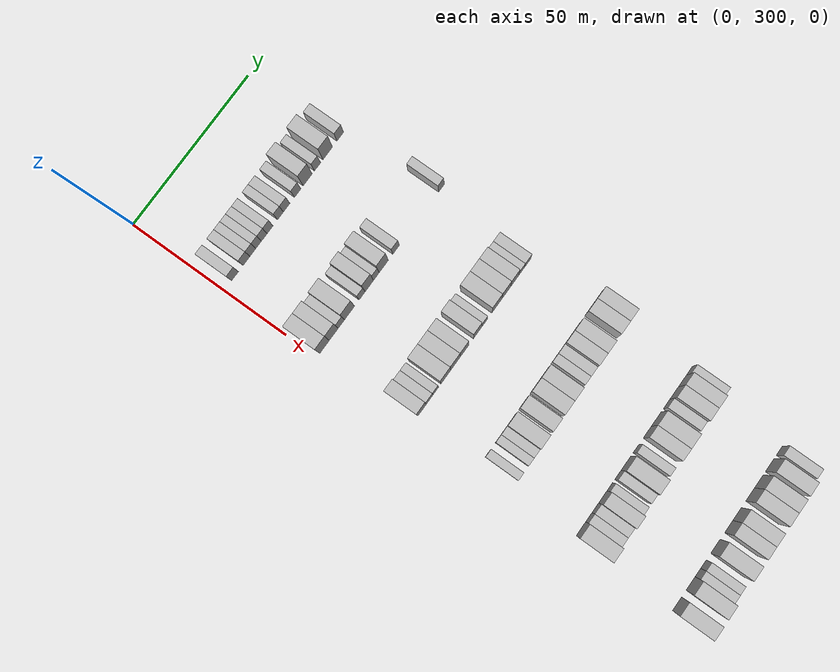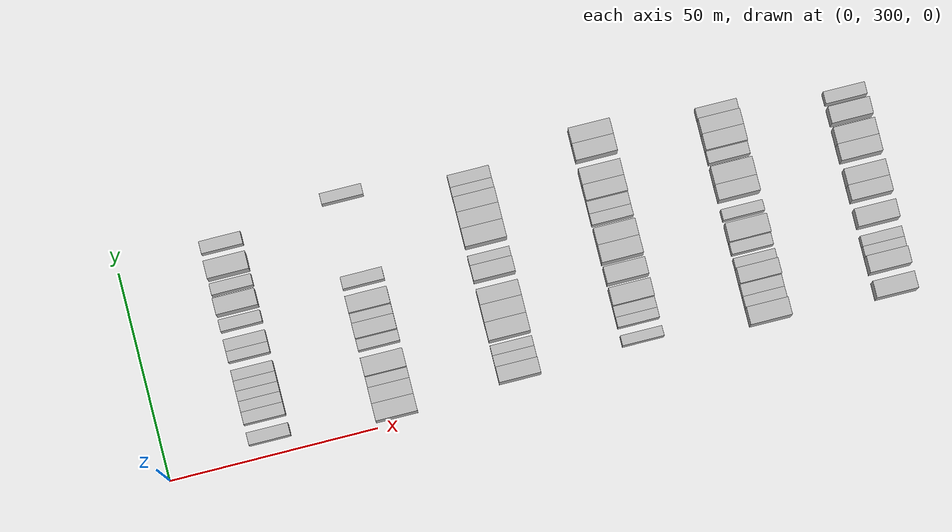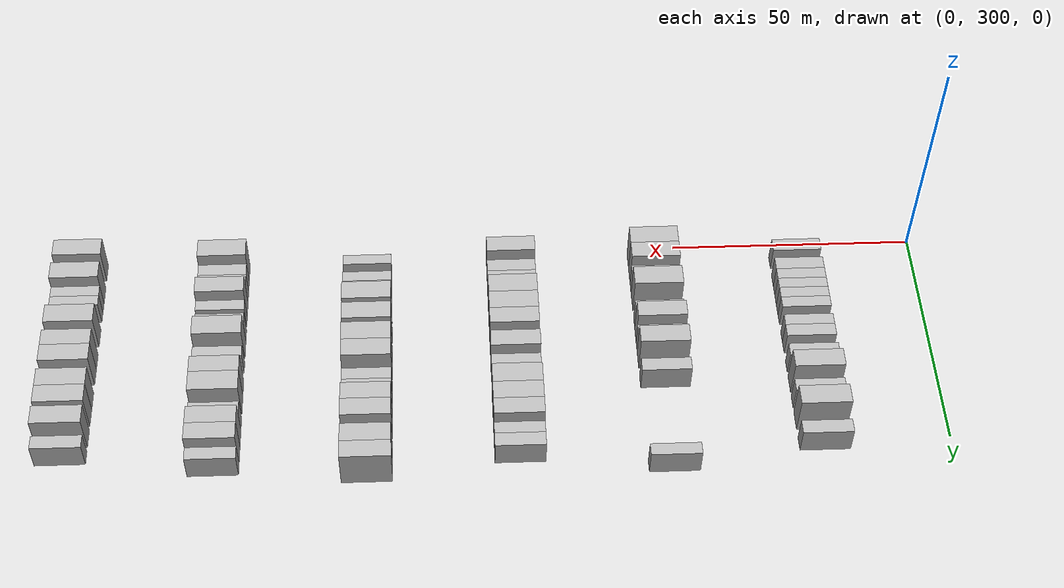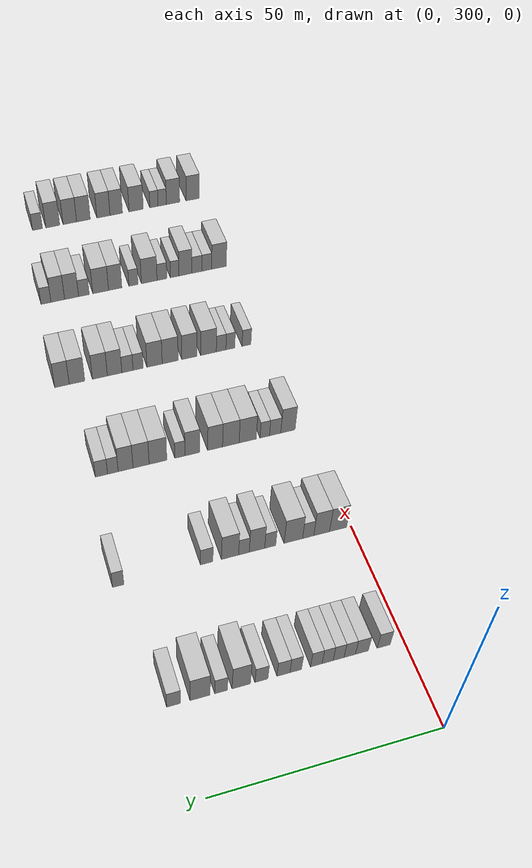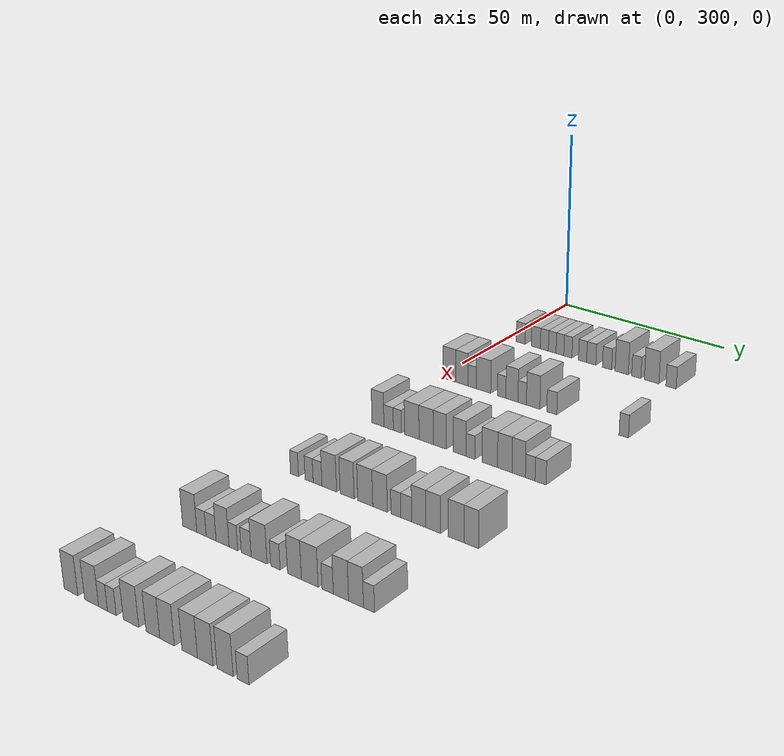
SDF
<sdf version="1.6">
 <world name="default">
  <model name="building_191">
   <static>1</static>
   <pose>25.0000 304.6626 0 0.000000 0.000000 0.000000</pose>
   <link name="link">
    <pose>0 0 3.00 0 0 0</pose>
    <collision name="collision"><geometry><box><size>10.0000 2.9423 6.0000</size></box></geometry></collision>
    <visual name="visual">
     <cast_shadows>0</cast_shadows>
     <geometry><box><size>10.0000 2.9423 6.0000</size></box></geometry>
     <material>
      <script>
       <uri>model://HANNAS_wall/materials/scripts</uri>
       <uri>model://HANNAS_wall/materials/textures</uri>
       <name>vrc/HANNAS_wall</name>
      </script>
     </material>
    </visual>
   </link>
  </model>
  <model name="building_192">
   <static>1</static>
   <pose>25.0000 309.6042 0 0.000000 0.000000 0.000000</pose>
   <link name="link">
    <pose>0 0 3.00 0 0 0</pose>
    <collision name="collision"><geometry><box><size>10.0000 2.9409 6.0000</size></box></geometry></collision>
    <visual name="visual">
     <cast_shadows>0</cast_shadows>
     <geometry><box><size>10.0000 2.9409 6.0000</size></box></geometry>
     <material>
      <script>
       <uri>model://HANNAS_wall/materials/scripts</uri>
       <uri>model://HANNAS_wall/materials/textures</uri>
       <name>vrc/HANNAS_wall</name>
      </script>
     </material>
    </visual>
   </link>
  </model>
  <model name="building_193">
   <static>1</static>
   <pose>25.0000 312.3490 0 0.000000 0.000000 0.000000</pose>
   <link name="link">
    <pose>0 0 3.00 0 0 0</pose>
    <collision name="collision"><geometry><box><size>10.0000 2.5488 6.0000</size></box></geometry></collision>
    <visual name="visual">
     <cast_shadows>0</cast_shadows>
     <geometry><box><size>10.0000 2.5488 6.0000</size></box></geometry>
     <material>
      <script>
       <uri>model://HANNAS_wall/materials/scripts</uri>
       <uri>model://HANNAS_wall/materials/textures</uri>
       <name>vrc/HANNAS_wall</name>
      </script>
     </material>
    </visual>
   </link>
  </model>
  <model name="building_194">
   <static>1</static>
   <pose>25.0000 314.8379 0 0.000000 0.000000 0.000000</pose>
   <link name="link">
    <pose>0 0 3.00 0 0 0</pose>
    <collision name="collision"><geometry><box><size>10.0000 2.4290 6.0000</size></box></geometry></collision>
    <visual name="visual">
     <cast_shadows>0</cast_shadows>
     <geometry><box><size>10.0000 2.4290 6.0000</size></box></geometry>
     <material>
      <script>
       <uri>model://HANNAS_wall/materials/scripts</uri>
       <uri>model://HANNAS_wall/materials/textures</uri>
       <name>vrc/HANNAS_wall</name>
      </script>
     </material>
    </visual>
   </link>
  </model>
  <model name="building_195">
   <static>1</static>
   <pose>25.0000 317.2909 0 0.000000 0.000000 0.000000</pose>
   <link name="link">
    <pose>0 0 3.00 0 0 0</pose>
    <collision name="collision"><geometry><box><size>10.0000 2.4771 6.0000</size></box></geometry></collision>
    <visual name="visual">
     <cast_shadows>0</cast_shadows>
     <geometry><box><size>10.0000 2.4771 6.0000</size></box></geometry>
     <material>
      <script>
       <uri>model://HANNAS_wall/materials/scripts</uri>
       <uri>model://HANNAS_wall/materials/textures</uri>
       <name>vrc/HANNAS_wall</name>
      </script>
     </material>
    </visual>
   </link>
  </model>
  <model name="building_196">
   <static>1</static>
   <pose>25.0000 319.8122 0 0.000000 0.000000 0.000000</pose>
   <link name="link">
    <pose>0 0 3.00 0 0 0</pose>
    <collision name="collision"><geometry><box><size>10.0000 2.5655 6.0000</size></box></geometry></collision>
    <visual name="visual">
     <cast_shadows>0</cast_shadows>
     <geometry><box><size>10.0000 2.5655 6.0000</size></box></geometry>
     <material>
      <script>
       <uri>model://HANNAS_wall/materials/scripts</uri>
       <uri>model://HANNAS_wall/materials/textures</uri>
       <name>vrc/HANNAS_wall</name>
      </script>
     </material>
    </visual>
   </link>
  </model>
  <model name="building_197">
   <static>1</static>
   <pose>25.0000 324.3695 0 0.000000 0.000000 0.000000</pose>
   <link name="link">
    <pose>0 0 3.00 0 0 0</pose>
    <collision name="collision"><geometry><box><size>10.0000 2.5490 6.0000</size></box></geometry></collision>
    <visual name="visual">
     <cast_shadows>0</cast_shadows>
     <geometry><box><size>10.0000 2.5490 6.0000</size></box></geometry>
     <material>
      <script>
       <uri>model://HANNAS_wall/materials/scripts</uri>
       <uri>model://HANNAS_wall/materials/textures</uri>
       <name>vrc/HANNAS_wall</name>
      </script>
     </material>
    </visual>
   </link>
  </model>
  <model name="building_198">
   <static>1</static>
   <pose>25.0000 327.0609 0 0.000000 0.000000 0.000000</pose>
   <link name="link">
    <pose>0 0 3.00 0 0 0</pose>
    <collision name="collision"><geometry><box><size>10.0000 2.8338 6.0000</size></box></geometry></collision>
    <visual name="visual">
     <cast_shadows>0</cast_shadows>
     <geometry><box><size>10.0000 2.8338 6.0000</size></box></geometry>
     <material>
      <script>
       <uri>model://HANNAS_wall/materials/scripts</uri>
       <uri>model://HANNAS_wall/materials/textures</uri>
       <name>vrc/HANNAS_wall</name>
      </script>
     </material>
    </visual>
   </link>
  </model>
  <model name="building_199">
   <static>1</static>
   <pose>25.0000 331.8879 0 0.000000 0.000000 0.000000</pose>
   <link name="link">
    <pose>0 0 3.00 0 0 0</pose>
    <collision name="collision"><geometry><box><size>10.0000 2.8203 6.0000</size></box></geometry></collision>
    <visual name="visual">
     <cast_shadows>0</cast_shadows>
     <geometry><box><size>10.0000 2.8203 6.0000</size></box></geometry>
     <material>
      <script>
       <uri>model://HANNAS_wall/materials/scripts</uri>
       <uri>model://HANNAS_wall/materials/textures</uri>
       <name>vrc/HANNAS_wall</name>
      </script>
     </material>
    </visual>
   </link>
  </model>
  <model name="building_200">
   <static>1</static>
   <pose>25.0000 336.2803 0 0.000000 0.000000 0.000000</pose>
   <link name="link">
    <pose>0 0 4.50 0 0 0</pose>
    <collision name="collision"><geometry><box><size>10.0000 3.9645 9.0000</size></box></geometry></collision>
    <visual name="visual">
     <cast_shadows>0</cast_shadows>
     <geometry><box><size>10.0000 3.9645 9.0000</size></box></geometry>
     <material>
      <script>
       <uri>model://HANNAS_wall/materials/scripts</uri>
       <uri>model://HANNAS_wall/materials/textures</uri>
       <name>vrc/HANNAS_wall</name>
      </script>
     </material>
    </visual>
   </link>
  </model>
  <model name="building_201">
   <static>1</static>
   <pose>25.0000 340.6287 0 0.000000 0.000000 0.000000</pose>
   <link name="link">
    <pose>0 0 3.00 0 0 0</pose>
    <collision name="collision"><geometry><box><size>10.0000 2.7323 6.0000</size></box></geometry></collision>
    <visual name="visual">
     <cast_shadows>0</cast_shadows>
     <geometry><box><size>10.0000 2.7323 6.0000</size></box></geometry>
     <material>
      <script>
       <uri>model://HANNAS_wall/materials/scripts</uri>
       <uri>model://HANNAS_wall/materials/textures</uri>
       <name>vrc/HANNAS_wall</name>
      </script>
     </material>
    </visual>
   </link>
  </model>
  <model name="building_202">
   <static>1</static>
   <pose>25.0000 345.1216 0 0.000000 0.000000 0.000000</pose>
   <link name="link">
    <pose>0 0 4.50 0 0 0</pose>
    <collision name="collision"><geometry><box><size>10.0000 4.2535 9.0000</size></box></geometry></collision>
    <visual name="visual">
     <cast_shadows>0</cast_shadows>
     <geometry><box><size>10.0000 4.2535 9.0000</size></box></geometry>
     <material>
      <script>
       <uri>model://HANNAS_wall/materials/scripts</uri>
       <uri>model://HANNAS_wall/materials/textures</uri>
       <name>vrc/HANNAS_wall</name>
      </script>
     </material>
    </visual>
   </link>
  </model>
  <model name="building_203">
   <static>1</static>
   <pose>25.0000 350.7217 0 0.000000 0.000000 0.000000</pose>
   <link name="link">
    <pose>0 0 3.00 0 0 0</pose>
    <collision name="collision"><geometry><box><size>10.0000 2.9467 6.0000</size></box></geometry></collision>
    <visual name="visual">
     <cast_shadows>0</cast_shadows>
     <geometry><box><size>10.0000 2.9467 6.0000</size></box></geometry>
     <material>
      <script>
       <uri>model://HANNAS_wall/materials/scripts</uri>
       <uri>model://HANNAS_wall/materials/textures</uri>
       <name>vrc/HANNAS_wall</name>
      </script>
     </material>
    </visual>
   </link>
  </model>
  <model name="building_418">
   <static>1</static>
   <pose>55.0000 303.3141 0 0.000000 0.000000 0.000000</pose>
   <link name="link">
    <pose>0 0 4.50 0 0 0</pose>
    <collision name="collision"><geometry><box><size>10.0000 4.1406 9.0000</size></box></geometry></collision>
    <visual name="visual">
     <cast_shadows>0</cast_shadows>
     <geometry><box><size>10.0000 4.1406 9.0000</size></box></geometry>
     <material>
      <script>
       <uri>model://HANNAS_wall/materials/scripts</uri>
       <uri>model://HANNAS_wall/materials/textures</uri>
       <name>vrc/HANNAS_wall</name>
      </script>
     </material>
    </visual>
   </link>
  </model>
  <model name="building_419">
   <static>1</static>
   <pose>55.0000 307.2907 0 0.000000 0.000000 0.000000</pose>
   <link name="link">
    <pose>0 0 4.50 0 0 0</pose>
    <collision name="collision"><geometry><box><size>10.0000 3.8127 9.0000</size></box></geometry></collision>
    <visual name="visual">
     <cast_shadows>0</cast_shadows>
     <geometry><box><size>10.0000 3.8127 9.0000</size></box></geometry>
     <material>
      <script>
       <uri>model://HANNAS_wall/materials/scripts</uri>
       <uri>model://HANNAS_wall/materials/textures</uri>
       <name>vrc/HANNAS_wall</name>
      </script>
     </material>
    </visual>
   </link>
  </model>
  <model name="building_420">
   <static>1</static>
   <pose>55.0000 310.5546 0 0.000000 0.000000 0.000000</pose>
   <link name="link">
    <pose>0 0 3.00 0 0 0</pose>
    <collision name="collision"><geometry><box><size>10.0000 2.7152 6.0000</size></box></geometry></collision>
    <visual name="visual">
     <cast_shadows>0</cast_shadows>
     <geometry><box><size>10.0000 2.7152 6.0000</size></box></geometry>
     <material>
      <script>
       <uri>model://HANNAS_wall/materials/scripts</uri>
       <uri>model://HANNAS_wall/materials/textures</uri>
       <name>vrc/HANNAS_wall</name>
      </script>
     </material>
    </visual>
   </link>
  </model>
  <model name="building_421">
   <static>1</static>
   <pose>55.0000 314.1293 0 0.000000 0.000000 0.000000</pose>
   <link name="link">
    <pose>0 0 4.50 0 0 0</pose>
    <collision name="collision"><geometry><box><size>10.0000 4.4342 9.0000</size></box></geometry></collision>
    <visual name="visual">
     <cast_shadows>0</cast_shadows>
     <geometry><box><size>10.0000 4.4342 9.0000</size></box></geometry>
     <material>
      <script>
       <uri>model://HANNAS_wall/materials/scripts</uri>
       <uri>model://HANNAS_wall/materials/textures</uri>
       <name>vrc/HANNAS_wall</name>
      </script>
     </material>
    </visual>
   </link>
  </model>
  <model name="building_422">
   <static>1</static>
   <pose>55.0000 319.6673 0 0.000000 0.000000 0.000000</pose>
   <link name="link">
    <pose>0 0 3.00 0 0 0</pose>
    <collision name="collision"><geometry><box><size>10.0000 2.6417 6.0000</size></box></geometry></collision>
    <visual name="visual">
     <cast_shadows>0</cast_shadows>
     <geometry><box><size>10.0000 2.6417 6.0000</size></box></geometry>
     <material>
      <script>
       <uri>model://HANNAS_wall/materials/scripts</uri>
       <uri>model://HANNAS_wall/materials/textures</uri>
       <name>vrc/HANNAS_wall</name>
      </script>
     </material>
    </visual>
   </link>
  </model>
  <model name="building_423">
   <static>1</static>
   <pose>55.0000 322.8166 0 0.000000 0.000000 0.000000</pose>
   <link name="link">
    <pose>0 0 4.50 0 0 0</pose>
    <collision name="collision"><geometry><box><size>10.0000 3.6570 9.0000</size></box></geometry></collision>
    <visual name="visual">
     <cast_shadows>0</cast_shadows>
     <geometry><box><size>10.0000 3.6570 9.0000</size></box></geometry>
     <material>
      <script>
       <uri>model://HANNAS_wall/materials/scripts</uri>
       <uri>model://HANNAS_wall/materials/textures</uri>
       <name>vrc/HANNAS_wall</name>
      </script>
     </material>
    </visual>
   </link>
  </model>
  <model name="building_424">
   <static>1</static>
   <pose>55.0000 325.9021 0 0.000000 0.000000 0.000000</pose>
   <link name="link">
    <pose>0 0 3.00 0 0 0</pose>
    <collision name="collision"><geometry><box><size>10.0000 2.5140 6.0000</size></box></geometry></collision>
    <visual name="visual">
     <cast_shadows>0</cast_shadows>
     <geometry><box><size>10.0000 2.5140 6.0000</size></box></geometry>
     <material>
      <script>
       <uri>model://HANNAS_wall/materials/scripts</uri>
       <uri>model://HANNAS_wall/materials/textures</uri>
       <name>vrc/HANNAS_wall</name>
      </script>
     </material>
    </visual>
   </link>
  </model>
  <model name="building_425">
   <static>1</static>
   <pose>55.0000 329.1669 0 0.000000 0.000000 0.000000</pose>
   <link name="link">
    <pose>0 0 4.50 0 0 0</pose>
    <collision name="collision"><geometry><box><size>10.0000 4.0157 9.0000</size></box></geometry></collision>
    <visual name="visual">
     <cast_shadows>0</cast_shadows>
     <geometry><box><size>10.0000 4.0157 9.0000</size></box></geometry>
     <material>
      <script>
       <uri>model://HANNAS_wall/materials/scripts</uri>
       <uri>model://HANNAS_wall/materials/textures</uri>
       <name>vrc/HANNAS_wall</name>
      </script>
     </material>
    </visual>
   </link>
  </model>
  <model name="building_426">
   <static>1</static>
   <pose>55.0000 334.6207 0 0.000000 0.000000 0.000000</pose>
   <link name="link">
    <pose>0 0 3.00 0 0 0</pose>
    <collision name="collision"><geometry><box><size>10.0000 2.8919 6.0000</size></box></geometry></collision>
    <visual name="visual">
     <cast_shadows>0</cast_shadows>
     <geometry><box><size>10.0000 2.8919 6.0000</size></box></geometry>
     <material>
      <script>
       <uri>model://HANNAS_wall/materials/scripts</uri>
       <uri>model://HANNAS_wall/materials/textures</uri>
       <name>vrc/HANNAS_wall</name>
      </script>
     </material>
    </visual>
   </link>
  </model>
  <model name="building_427">
   <static>1</static>
   <pose>55.0000 354.9144 0 0.000000 0.000000 0.000000</pose>
   <link name="link">
    <pose>0 0 3.00 0 0 0</pose>
    <collision name="collision"><geometry><box><size>10.0000 2.5652 6.0000</size></box></geometry></collision>
    <visual name="visual">
     <cast_shadows>0</cast_shadows>
     <geometry><box><size>10.0000 2.5652 6.0000</size></box></geometry>
     <material>
      <script>
       <uri>model://HANNAS_wall/materials/scripts</uri>
       <uri>model://HANNAS_wall/materials/textures</uri>
       <name>vrc/HANNAS_wall</name>
      </script>
     </material>
    </visual>
   </link>
  </model>
  <model name="building_626">
   <static>1</static>
   <pose>85.0000 304.7585 0 0.000000 0.000000 0.000000</pose>
   <link name="link">
    <pose>0 0 4.50 0 0 0</pose>
    <collision name="collision"><geometry><box><size>10.0000 3.7063 9.0000</size></box></geometry></collision>
    <visual name="visual">
     <cast_shadows>0</cast_shadows>
     <geometry><box><size>10.0000 3.7063 9.0000</size></box></geometry>
     <material>
      <script>
       <uri>model://HANNAS_wall/materials/scripts</uri>
       <uri>model://HANNAS_wall/materials/textures</uri>
       <name>vrc/HANNAS_wall</name>
      </script>
     </material>
    </visual>
   </link>
  </model>
  <model name="building_627">
   <static>1</static>
   <pose>85.0000 308.0695 0 0.000000 0.000000 0.000000</pose>
   <link name="link">
    <pose>0 0 3.00 0 0 0</pose>
    <collision name="collision"><geometry><box><size>10.0000 2.9158 6.0000</size></box></geometry></collision>
    <visual name="visual">
     <cast_shadows>0</cast_shadows>
     <geometry><box><size>10.0000 2.9158 6.0000</size></box></geometry>
     <material>
      <script>
       <uri>model://HANNAS_wall/materials/scripts</uri>
       <uri>model://HANNAS_wall/materials/textures</uri>
       <name>vrc/HANNAS_wall</name>
      </script>
     </material>
    </visual>
   </link>
  </model>
  <model name="building_628">
   <static>1</static>
   <pose>85.0000 310.7402 0 0.000000 0.000000 0.000000</pose>
   <link name="link">
    <pose>0 0 3.00 0 0 0</pose>
    <collision name="collision"><geometry><box><size>10.0000 2.4257 6.0000</size></box></geometry></collision>
    <visual name="visual">
     <cast_shadows>0</cast_shadows>
     <geometry><box><size>10.0000 2.4257 6.0000</size></box></geometry>
     <material>
      <script>
       <uri>model://HANNAS_wall/materials/scripts</uri>
       <uri>model://HANNAS_wall/materials/textures</uri>
       <name>vrc/HANNAS_wall</name>
      </script>
     </material>
    </visual>
   </link>
  </model>
  <model name="building_629">
   <static>1</static>
   <pose>85.0000 315.1376 0 0.000000 0.000000 0.000000</pose>
   <link name="link">
    <pose>0 0 4.50 0 0 0</pose>
    <collision name="collision"><geometry><box><size>10.0000 4.3690 9.0000</size></box></geometry></collision>
    <visual name="visual">
     <cast_shadows>0</cast_shadows>
     <geometry><box><size>10.0000 4.3690 9.0000</size></box></geometry>
     <material>
      <script>
       <uri>model://HANNAS_wall/materials/scripts</uri>
       <uri>model://HANNAS_wall/materials/textures</uri>
       <name>vrc/HANNAS_wall</name>
      </script>
     </material>
    </visual>
   </link>
  </model>
  <model name="building_630">
   <static>1</static>
   <pose>85.0000 319.4232 0 0.000000 0.000000 0.000000</pose>
   <link name="link">
    <pose>0 0 4.50 0 0 0</pose>
    <collision name="collision"><geometry><box><size>10.0000 4.2024 9.0000</size></box></geometry></collision>
    <visual name="visual">
     <cast_shadows>0</cast_shadows>
     <geometry><box><size>10.0000 4.2024 9.0000</size></box></geometry>
     <material>
      <script>
       <uri>model://HANNAS_wall/materials/scripts</uri>
       <uri>model://HANNAS_wall/materials/textures</uri>
       <name>vrc/HANNAS_wall</name>
      </script>
     </material>
    </visual>
   </link>
  </model>
  <model name="building_631">
   <static>1</static>
   <pose>85.0000 323.4076 0 0.000000 0.000000 0.000000</pose>
   <link name="link">
    <pose>0 0 4.50 0 0 0</pose>
    <collision name="collision"><geometry><box><size>10.0000 3.7664 9.0000</size></box></geometry></collision>
    <visual name="visual">
     <cast_shadows>0</cast_shadows>
     <geometry><box><size>10.0000 3.7664 9.0000</size></box></geometry>
     <material>
      <script>
       <uri>model://HANNAS_wall/materials/scripts</uri>
       <uri>model://HANNAS_wall/materials/textures</uri>
       <name>vrc/HANNAS_wall</name>
      </script>
     </material>
    </visual>
   </link>
  </model>
  <model name="building_632">
   <static>1</static>
   <pose>85.0000 329.1449 0 0.000000 0.000000 0.000000</pose>
   <link name="link">
    <pose>0 0 4.50 0 0 0</pose>
    <collision name="collision"><geometry><box><size>10.0000 3.7081 9.0000</size></box></geometry></collision>
    <visual name="visual">
     <cast_shadows>0</cast_shadows>
     <geometry><box><size>10.0000 3.7081 9.0000</size></box></geometry>
     <material>
      <script>
       <uri>model://HANNAS_wall/materials/scripts</uri>
       <uri>model://HANNAS_wall/materials/textures</uri>
       <name>vrc/HANNAS_wall</name>
      </script>
     </material>
    </visual>
   </link>
  </model>
  <model name="building_633">
   <static>1</static>
   <pose>85.0000 332.2609 0 0.000000 0.000000 0.000000</pose>
   <link name="link">
    <pose>0 0 3.00 0 0 0</pose>
    <collision name="collision"><geometry><box><size>10.0000 2.5239 6.0000</size></box></geometry></collision>
    <visual name="visual">
     <cast_shadows>0</cast_shadows>
     <geometry><box><size>10.0000 2.5239 6.0000</size></box></geometry>
     <material>
      <script>
       <uri>model://HANNAS_wall/materials/scripts</uri>
       <uri>model://HANNAS_wall/materials/textures</uri>
       <name>vrc/HANNAS_wall</name>
      </script>
     </material>
    </visual>
   </link>
  </model>
  <model name="building_634">
   <static>1</static>
   <pose>85.0000 337.7079 0 0.000000 0.000000 0.000000</pose>
   <link name="link">
    <pose>0 0 4.50 0 0 0</pose>
    <collision name="collision"><geometry><box><size>10.0000 4.3700 9.0000</size></box></geometry></collision>
    <visual name="visual">
     <cast_shadows>0</cast_shadows>
     <geometry><box><size>10.0000 4.3700 9.0000</size></box></geometry>
     <material>
      <script>
       <uri>model://HANNAS_wall/materials/scripts</uri>
       <uri>model://HANNAS_wall/materials/textures</uri>
       <name>vrc/HANNAS_wall</name>
      </script>
     </material>
    </visual>
   </link>
  </model>
  <model name="building_635">
   <static>1</static>
   <pose>85.0000 341.8747 0 0.000000 0.000000 0.000000</pose>
   <link name="link">
    <pose>0 0 4.50 0 0 0</pose>
    <collision name="collision"><geometry><box><size>10.0000 3.9636 9.0000</size></box></geometry></collision>
    <visual name="visual">
     <cast_shadows>0</cast_shadows>
     <geometry><box><size>10.0000 3.9636 9.0000</size></box></geometry>
     <material>
      <script>
       <uri>model://HANNAS_wall/materials/scripts</uri>
       <uri>model://HANNAS_wall/materials/textures</uri>
       <name>vrc/HANNAS_wall</name>
      </script>
     </material>
    </visual>
   </link>
  </model>
  <model name="building_636">
   <static>1</static>
   <pose>85.0000 345.6819 0 0.000000 0.000000 0.000000</pose>
   <link name="link">
    <pose>0 0 4.50 0 0 0</pose>
    <collision name="collision"><geometry><box><size>10.0000 3.6508 9.0000</size></box></geometry></collision>
    <visual name="visual">
     <cast_shadows>0</cast_shadows>
     <geometry><box><size>10.0000 3.6508 9.0000</size></box></geometry>
     <material>
      <script>
       <uri>model://HANNAS_wall/materials/scripts</uri>
       <uri>model://HANNAS_wall/materials/textures</uri>
       <name>vrc/HANNAS_wall</name>
      </script>
     </material>
    </visual>
   </link>
  </model>
  <model name="building_637">
   <static>1</static>
   <pose>85.0000 348.8013 0 0.000000 0.000000 0.000000</pose>
   <link name="link">
    <pose>0 0 3.00 0 0 0</pose>
    <collision name="collision"><geometry><box><size>10.0000 2.5881 6.0000</size></box></geometry></collision>
    <visual name="visual">
     <cast_shadows>0</cast_shadows>
     <geometry><box><size>10.0000 2.5881 6.0000</size></box></geometry>
     <material>
      <script>
       <uri>model://HANNAS_wall/materials/scripts</uri>
       <uri>model://HANNAS_wall/materials/textures</uri>
       <name>vrc/HANNAS_wall</name>
      </script>
     </material>
    </visual>
   </link>
  </model>
  <model name="building_638">
   <static>1</static>
   <pose>85.0000 351.5769 0 0.000000 0.000000 0.000000</pose>
   <link name="link">
    <pose>0 0 3.00 0 0 0</pose>
    <collision name="collision"><geometry><box><size>10.0000 2.9632 6.0000</size></box></geometry></collision>
    <visual name="visual">
     <cast_shadows>0</cast_shadows>
     <geometry><box><size>10.0000 2.9632 6.0000</size></box></geometry>
     <material>
      <script>
       <uri>model://HANNAS_wall/materials/scripts</uri>
       <uri>model://HANNAS_wall/materials/textures</uri>
       <name>vrc/HANNAS_wall</name>
      </script>
     </material>
    </visual>
   </link>
  </model>
  <model name="building_849">
   <static>1</static>
   <pose>115.0000 305.5901 0 0.000000 0.000000 0.000000</pose>
   <link name="link">
    <pose>0 0 3.00 0 0 0</pose>
    <collision name="collision"><geometry><box><size>10.0000 2.4163 6.0000</size></box></geometry></collision>
    <visual name="visual">
     <cast_shadows>0</cast_shadows>
     <geometry><box><size>10.0000 2.4163 6.0000</size></box></geometry>
     <material>
      <script>
       <uri>model://HANNAS_wall/materials/scripts</uri>
       <uri>model://HANNAS_wall/materials/textures</uri>
       <name>vrc/HANNAS_wall</name>
      </script>
     </material>
    </visual>
   </link>
  </model>
  <model name="building_850">
   <static>1</static>
   <pose>115.0000 310.0049 0 0.000000 0.000000 0.000000</pose>
   <link name="link">
    <pose>0 0 3.00 0 0 0</pose>
    <collision name="collision"><geometry><box><size>10.0000 2.4134 6.0000</size></box></geometry></collision>
    <visual name="visual">
     <cast_shadows>0</cast_shadows>
     <geometry><box><size>10.0000 2.4134 6.0000</size></box></geometry>
     <material>
      <script>
       <uri>model://HANNAS_wall/materials/scripts</uri>
       <uri>model://HANNAS_wall/materials/textures</uri>
       <name>vrc/HANNAS_wall</name>
      </script>
     </material>
    </visual>
   </link>
  </model>
  <model name="building_851">
   <static>1</static>
   <pose>115.0000 312.5187 0 0.000000 0.000000 0.000000</pose>
   <link name="link">
    <pose>0 0 3.00 0 0 0</pose>
    <collision name="collision"><geometry><box><size>10.0000 2.6141 6.0000</size></box></geometry></collision>
    <visual name="visual">
     <cast_shadows>0</cast_shadows>
     <geometry><box><size>10.0000 2.6141 6.0000</size></box></geometry>
     <material>
      <script>
       <uri>model://HANNAS_wall/materials/scripts</uri>
       <uri>model://HANNAS_wall/materials/textures</uri>
       <name>vrc/HANNAS_wall</name>
      </script>
     </material>
    </visual>
   </link>
  </model>
  <model name="building_852">
   <static>1</static>
   <pose>115.0000 315.9643 0 0.000000 0.000000 0.000000</pose>
   <link name="link">
    <pose>0 0 4.50 0 0 0</pose>
    <collision name="collision"><geometry><box><size>10.0000 4.2771 9.0000</size></box></geometry></collision>
    <visual name="visual">
     <cast_shadows>0</cast_shadows>
     <geometry><box><size>10.0000 4.2771 9.0000</size></box></geometry>
     <material>
      <script>
       <uri>model://HANNAS_wall/materials/scripts</uri>
       <uri>model://HANNAS_wall/materials/textures</uri>
       <name>vrc/HANNAS_wall</name>
      </script>
     </material>
    </visual>
   </link>
  </model>
  <model name="building_853">
   <static>1</static>
   <pose>115.0000 321.1301 0 0.000000 0.000000 0.000000</pose>
   <link name="link">
    <pose>0 0 4.50 0 0 0</pose>
    <collision name="collision"><geometry><box><size>10.0000 4.0545 9.0000</size></box></geometry></collision>
    <visual name="visual">
     <cast_shadows>0</cast_shadows>
     <geometry><box><size>10.0000 4.0545 9.0000</size></box></geometry>
     <material>
      <script>
       <uri>model://HANNAS_wall/materials/scripts</uri>
       <uri>model://HANNAS_wall/materials/textures</uri>
       <name>vrc/HANNAS_wall</name>
      </script>
     </material>
    </visual>
   </link>
  </model>
  <model name="building_854">
   <static>1</static>
   <pose>115.0000 326.2889 0 0.000000 0.000000 0.000000</pose>
   <link name="link">
    <pose>0 0 4.50 0 0 0</pose>
    <collision name="collision"><geometry><box><size>10.0000 4.2631 9.0000</size></box></geometry></collision>
    <visual name="visual">
     <cast_shadows>0</cast_shadows>
     <geometry><box><size>10.0000 4.2631 9.0000</size></box></geometry>
     <material>
      <script>
       <uri>model://HANNAS_wall/materials/scripts</uri>
       <uri>model://HANNAS_wall/materials/textures</uri>
       <name>vrc/HANNAS_wall</name>
      </script>
     </material>
    </visual>
   </link>
  </model>
  <model name="building_855">
   <static>1</static>
   <pose>115.0000 330.4505 0 0.000000 0.000000 0.000000</pose>
   <link name="link">
    <pose>0 0 4.50 0 0 0</pose>
    <collision name="collision"><geometry><box><size>10.0000 4.0599 9.0000</size></box></geometry></collision>
    <visual name="visual">
     <cast_shadows>0</cast_shadows>
     <geometry><box><size>10.0000 4.0599 9.0000</size></box></geometry>
     <material>
      <script>
       <uri>model://HANNAS_wall/materials/scripts</uri>
       <uri>model://HANNAS_wall/materials/textures</uri>
       <name>vrc/HANNAS_wall</name>
      </script>
     </material>
    </visual>
   </link>
  </model>
  <model name="building_856">
   <static>1</static>
   <pose>115.0000 334.8202 0 0.000000 0.000000 0.000000</pose>
   <link name="link">
    <pose>0 0 3.00 0 0 0</pose>
    <collision name="collision"><geometry><box><size>10.0000 2.6797 6.0000</size></box></geometry></collision>
    <visual name="visual">
     <cast_shadows>0</cast_shadows>
     <geometry><box><size>10.0000 2.6797 6.0000</size></box></geometry>
     <material>
      <script>
       <uri>model://HANNAS_wall/materials/scripts</uri>
       <uri>model://HANNAS_wall/materials/textures</uri>
       <name>vrc/HANNAS_wall</name>
      </script>
     </material>
    </visual>
   </link>
  </model>
  <model name="building_857">
   <static>1</static>
   <pose>115.0000 337.6437 0 0.000000 0.000000 0.000000</pose>
   <link name="link">
    <pose>0 0 3.00 0 0 0</pose>
    <collision name="collision"><geometry><box><size>10.0000 2.9672 6.0000</size></box></geometry></collision>
    <visual name="visual">
     <cast_shadows>0</cast_shadows>
     <geometry><box><size>10.0000 2.9672 6.0000</size></box></geometry>
     <material>
      <script>
       <uri>model://HANNAS_wall/materials/scripts</uri>
       <uri>model://HANNAS_wall/materials/textures</uri>
       <name>vrc/HANNAS_wall</name>
      </script>
     </material>
    </visual>
   </link>
  </model>
  <model name="building_858">
   <static>1</static>
   <pose>115.0000 341.0255 0 0.000000 0.000000 0.000000</pose>
   <link name="link">
    <pose>0 0 4.50 0 0 0</pose>
    <collision name="collision"><geometry><box><size>10.0000 3.7963 9.0000</size></box></geometry></collision>
    <visual name="visual">
     <cast_shadows>0</cast_shadows>
     <geometry><box><size>10.0000 3.7963 9.0000</size></box></geometry>
     <material>
      <script>
       <uri>model://HANNAS_wall/materials/scripts</uri>
       <uri>model://HANNAS_wall/materials/textures</uri>
       <name>vrc/HANNAS_wall</name>
      </script>
     </material>
    </visual>
   </link>
  </model>
  <model name="building_859">
   <static>1</static>
   <pose>115.0000 344.8766 0 0.000000 0.000000 0.000000</pose>
   <link name="link">
    <pose>0 0 4.50 0 0 0</pose>
    <collision name="collision"><geometry><box><size>10.0000 3.9059 9.0000</size></box></geometry></collision>
    <visual name="visual">
     <cast_shadows>0</cast_shadows>
     <geometry><box><size>10.0000 3.9059 9.0000</size></box></geometry>
     <material>
      <script>
       <uri>model://HANNAS_wall/materials/scripts</uri>
       <uri>model://HANNAS_wall/materials/textures</uri>
       <name>vrc/HANNAS_wall</name>
      </script>
     </material>
    </visual>
   </link>
  </model>
  <model name="building_860">
   <static>1</static>
   <pose>115.0000 350.8421 0 0.000000 0.000000 0.000000</pose>
   <link name="link">
    <pose>0 0 4.50 0 0 0</pose>
    <collision name="collision"><geometry><box><size>10.0000 4.0251 9.0000</size></box></geometry></collision>
    <visual name="visual">
     <cast_shadows>0</cast_shadows>
     <geometry><box><size>10.0000 4.0251 9.0000</size></box></geometry>
     <material>
      <script>
       <uri>model://HANNAS_wall/materials/scripts</uri>
       <uri>model://HANNAS_wall/materials/textures</uri>
       <name>vrc/HANNAS_wall</name>
      </script>
     </material>
    </visual>
   </link>
  </model>
  <model name="building_861">
   <static>1</static>
   <pose>115.0000 354.7361 0 0.000000 0.000000 0.000000</pose>
   <link name="link">
    <pose>0 0 4.50 0 0 0</pose>
    <collision name="collision"><geometry><box><size>10.0000 3.7628 9.0000</size></box></geometry></collision>
    <visual name="visual">
     <cast_shadows>0</cast_shadows>
     <geometry><box><size>10.0000 3.7628 9.0000</size></box></geometry>
     <material>
      <script>
       <uri>model://HANNAS_wall/materials/scripts</uri>
       <uri>model://HANNAS_wall/materials/textures</uri>
       <name>vrc/HANNAS_wall</name>
      </script>
     </material>
    </visual>
   </link>
  </model>
  <model name="building_1078">
   <static>1</static>
   <pose>145.0000 303.8109 0 0.000000 0.000000 0.000000</pose>
   <link name="link">
    <pose>0 0 4.50 0 0 0</pose>
    <collision name="collision"><geometry><box><size>10.0000 4.2393 9.0000</size></box></geometry></collision>
    <visual name="visual">
     <cast_shadows>0</cast_shadows>
     <geometry><box><size>10.0000 4.2393 9.0000</size></box></geometry>
     <material>
      <script>
       <uri>model://HANNAS_wall/materials/scripts</uri>
       <uri>model://HANNAS_wall/materials/textures</uri>
       <name>vrc/HANNAS_wall</name>
      </script>
     </material>
    </visual>
   </link>
  </model>
  <model name="building_1079">
   <static>1</static>
   <pose>145.0000 307.3127 0 0.000000 0.000000 0.000000</pose>
   <link name="link">
    <pose>0 0 3.00 0 0 0</pose>
    <collision name="collision"><geometry><box><size>10.0000 2.7643 6.0000</size></box></geometry></collision>
    <visual name="visual">
     <cast_shadows>0</cast_shadows>
     <geometry><box><size>10.0000 2.7643 6.0000</size></box></geometry>
     <material>
      <script>
       <uri>model://HANNAS_wall/materials/scripts</uri>
       <uri>model://HANNAS_wall/materials/textures</uri>
       <name>vrc/HANNAS_wall</name>
      </script>
     </material>
    </visual>
   </link>
  </model>
  <model name="building_1080">
   <static>1</static>
   <pose>145.0000 310.1511 0 0.000000 0.000000 0.000000</pose>
   <link name="link">
    <pose>0 0 3.00 0 0 0</pose>
    <collision name="collision"><geometry><box><size>10.0000 2.9124 6.0000</size></box></geometry></collision>
    <visual name="visual">
     <cast_shadows>0</cast_shadows>
     <geometry><box><size>10.0000 2.9124 6.0000</size></box></geometry>
     <material>
      <script>
       <uri>model://HANNAS_wall/materials/scripts</uri>
       <uri>model://HANNAS_wall/materials/textures</uri>
       <name>vrc/HANNAS_wall</name>
      </script>
     </material>
    </visual>
   </link>
  </model>
  <model name="building_1081">
   <static>1</static>
   <pose>145.0000 313.4851 0 0.000000 0.000000 0.000000</pose>
   <link name="link">
    <pose>0 0 4.50 0 0 0</pose>
    <collision name="collision"><geometry><box><size>10.0000 3.7556 9.0000</size></box></geometry></collision>
    <visual name="visual">
     <cast_shadows>0</cast_shadows>
     <geometry><box><size>10.0000 3.7556 9.0000</size></box></geometry>
     <material>
      <script>
       <uri>model://HANNAS_wall/materials/scripts</uri>
       <uri>model://HANNAS_wall/materials/textures</uri>
       <name>vrc/HANNAS_wall</name>
      </script>
     </material>
    </visual>
   </link>
  </model>
  <model name="building_1082">
   <static>1</static>
   <pose>145.0000 316.6065 0 0.000000 0.000000 0.000000</pose>
   <link name="link">
    <pose>0 0 3.00 0 0 0</pose>
    <collision name="collision"><geometry><box><size>10.0000 2.4872 6.0000</size></box></geometry></collision>
    <visual name="visual">
     <cast_shadows>0</cast_shadows>
     <geometry><box><size>10.0000 2.4872 6.0000</size></box></geometry>
     <material>
      <script>
       <uri>model://HANNAS_wall/materials/scripts</uri>
       <uri>model://HANNAS_wall/materials/textures</uri>
       <name>vrc/HANNAS_wall</name>
      </script>
     </material>
    </visual>
   </link>
  </model>
  <model name="building_1083">
   <static>1</static>
   <pose>145.0000 320.2449 0 0.000000 0.000000 0.000000</pose>
   <link name="link">
    <pose>0 0 3.00 0 0 0</pose>
    <collision name="collision"><geometry><box><size>10.0000 2.7896 6.0000</size></box></geometry></collision>
    <visual name="visual">
     <cast_shadows>0</cast_shadows>
     <geometry><box><size>10.0000 2.7896 6.0000</size></box></geometry>
     <material>
      <script>
       <uri>model://HANNAS_wall/materials/scripts</uri>
       <uri>model://HANNAS_wall/materials/textures</uri>
       <name>vrc/HANNAS_wall</name>
      </script>
     </material>
    </visual>
   </link>
  </model>
  <model name="building_1084">
   <static>1</static>
   <pose>145.0000 323.8650 0 0.000000 0.000000 0.000000</pose>
   <link name="link">
    <pose>0 0 4.50 0 0 0</pose>
    <collision name="collision"><geometry><box><size>10.0000 4.4506 9.0000</size></box></geometry></collision>
    <visual name="visual">
     <cast_shadows>0</cast_shadows>
     <geometry><box><size>10.0000 4.4506 9.0000</size></box></geometry>
     <material>
      <script>
       <uri>model://HANNAS_wall/materials/scripts</uri>
       <uri>model://HANNAS_wall/materials/textures</uri>
       <name>vrc/HANNAS_wall</name>
      </script>
     </material>
    </visual>
   </link>
  </model>
  <model name="building_1085">
   <static>1</static>
   <pose>145.0000 328.3714 0 0.000000 0.000000 0.000000</pose>
   <link name="link">
    <pose>0 0 3.00 0 0 0</pose>
    <collision name="collision"><geometry><box><size>10.0000 2.5621 6.0000</size></box></geometry></collision>
    <visual name="visual">
     <cast_shadows>0</cast_shadows>
     <geometry><box><size>10.0000 2.5621 6.0000</size></box></geometry>
     <material>
      <script>
       <uri>model://HANNAS_wall/materials/scripts</uri>
       <uri>model://HANNAS_wall/materials/textures</uri>
       <name>vrc/HANNAS_wall</name>
      </script>
     </material>
    </visual>
   </link>
  </model>
  <model name="building_1086">
   <static>1</static>
   <pose>145.0000 333.5202 0 0.000000 0.000000 0.000000</pose>
   <link name="link">
    <pose>0 0 4.50 0 0 0</pose>
    <collision name="collision"><geometry><box><size>10.0000 3.7355 9.0000</size></box></geometry></collision>
    <visual name="visual">
     <cast_shadows>0</cast_shadows>
     <geometry><box><size>10.0000 3.7355 9.0000</size></box></geometry>
     <material>
      <script>
       <uri>model://HANNAS_wall/materials/scripts</uri>
       <uri>model://HANNAS_wall/materials/textures</uri>
       <name>vrc/HANNAS_wall</name>
      </script>
     </material>
    </visual>
   </link>
  </model>
  <model name="building_1087">
   <static>1</static>
   <pose>145.0000 337.5963 0 0.000000 0.000000 0.000000</pose>
   <link name="link">
    <pose>0 0 4.50 0 0 0</pose>
    <collision name="collision"><geometry><box><size>10.0000 4.4167 9.0000</size></box></geometry></collision>
    <visual name="visual">
     <cast_shadows>0</cast_shadows>
     <geometry><box><size>10.0000 4.4167 9.0000</size></box></geometry>
     <material>
      <script>
       <uri>model://HANNAS_wall/materials/scripts</uri>
       <uri>model://HANNAS_wall/materials/textures</uri>
       <name>vrc/HANNAS_wall</name>
      </script>
     </material>
    </visual>
   </link>
  </model>
  <model name="building_1088">
   <static>1</static>
   <pose>145.0000 342.2775 0 0.000000 0.000000 0.000000</pose>
   <link name="link">
    <pose>0 0 3.00 0 0 0</pose>
    <collision name="collision"><geometry><box><size>10.0000 2.9457 6.0000</size></box></geometry></collision>
    <visual name="visual">
     <cast_shadows>0</cast_shadows>
     <geometry><box><size>10.0000 2.9457 6.0000</size></box></geometry>
     <material>
      <script>
       <uri>model://HANNAS_wall/materials/scripts</uri>
       <uri>model://HANNAS_wall/materials/textures</uri>
       <name>vrc/HANNAS_wall</name>
      </script>
     </material>
    </visual>
   </link>
  </model>
  <model name="building_1089">
   <static>1</static>
   <pose>145.0000 345.6944 0 0.000000 0.000000 0.000000</pose>
   <link name="link">
    <pose>0 0 4.50 0 0 0</pose>
    <collision name="collision"><geometry><box><size>10.0000 3.8881 9.0000</size></box></geometry></collision>
    <visual name="visual">
     <cast_shadows>0</cast_shadows>
     <geometry><box><size>10.0000 3.8881 9.0000</size></box></geometry>
     <material>
      <script>
       <uri>model://HANNAS_wall/materials/scripts</uri>
       <uri>model://HANNAS_wall/materials/textures</uri>
       <name>vrc/HANNAS_wall</name>
      </script>
     </material>
    </visual>
   </link>
  </model>
  <model name="building_1090">
   <static>1</static>
   <pose>145.0000 349.5234 0 0.000000 0.000000 0.000000</pose>
   <link name="link">
    <pose>0 0 4.50 0 0 0</pose>
    <collision name="collision"><geometry><box><size>10.0000 3.7698 9.0000</size></box></geometry></collision>
    <visual name="visual">
     <cast_shadows>0</cast_shadows>
     <geometry><box><size>10.0000 3.7698 9.0000</size></box></geometry>
     <material>
      <script>
       <uri>model://HANNAS_wall/materials/scripts</uri>
       <uri>model://HANNAS_wall/materials/textures</uri>
       <name>vrc/HANNAS_wall</name>
      </script>
     </material>
    </visual>
   </link>
  </model>
  <model name="building_1091">
   <static>1</static>
   <pose>145.0000 352.7764 0 0.000000 0.000000 0.000000</pose>
   <link name="link">
    <pose>0 0 3.00 0 0 0</pose>
    <collision name="collision"><geometry><box><size>10.0000 2.7363 6.0000</size></box></geometry></collision>
    <visual name="visual">
     <cast_shadows>0</cast_shadows>
     <geometry><box><size>10.0000 2.7363 6.0000</size></box></geometry>
     <material>
      <script>
       <uri>model://HANNAS_wall/materials/scripts</uri>
       <uri>model://HANNAS_wall/materials/textures</uri>
       <name>vrc/HANNAS_wall</name>
      </script>
     </material>
    </visual>
   </link>
  </model>
  <model name="building_1295">
   <static>1</static>
   <pose>175.0000 302.5894 0 0.000000 0.000000 0.000000</pose>
   <link name="link">
    <pose>0 0 4.50 0 0 0</pose>
    <collision name="collision"><geometry><box><size>10.0000 4.0628 9.0000</size></box></geometry></collision>
    <visual name="visual">
     <cast_shadows>0</cast_shadows>
     <geometry><box><size>10.0000 4.0628 9.0000</size></box></geometry>
     <material>
      <script>
       <uri>model://HANNAS_wall/materials/scripts</uri>
       <uri>model://HANNAS_wall/materials/textures</uri>
       <name>vrc/HANNAS_wall</name>
      </script>
     </material>
    </visual>
   </link>
  </model>
  <model name="building_1296">
   <static>1</static>
   <pose>175.0000 308.6536 0 0.000000 0.000000 0.000000</pose>
   <link name="link">
    <pose>0 0 4.50 0 0 0</pose>
    <collision name="collision"><geometry><box><size>10.0000 4.0656 9.0000</size></box></geometry></collision>
    <visual name="visual">
     <cast_shadows>0</cast_shadows>
     <geometry><box><size>10.0000 4.0656 9.0000</size></box></geometry>
     <material>
      <script>
       <uri>model://HANNAS_wall/materials/scripts</uri>
       <uri>model://HANNAS_wall/materials/textures</uri>
       <name>vrc/HANNAS_wall</name>
      </script>
     </material>
    </visual>
   </link>
  </model>
  <model name="building_1297">
   <static>1</static>
   <pose>175.0000 311.9499 0 0.000000 0.000000 0.000000</pose>
   <link name="link">
    <pose>0 0 3.00 0 0 0</pose>
    <collision name="collision"><geometry><box><size>10.0000 2.5270 6.0000</size></box></geometry></collision>
    <visual name="visual">
     <cast_shadows>0</cast_shadows>
     <geometry><box><size>10.0000 2.5270 6.0000</size></box></geometry>
     <material>
      <script>
       <uri>model://HANNAS_wall/materials/scripts</uri>
       <uri>model://HANNAS_wall/materials/textures</uri>
       <name>vrc/HANNAS_wall</name>
      </script>
     </material>
    </visual>
   </link>
  </model>
  <model name="building_1298">
   <static>1</static>
   <pose>175.0000 314.4626 0 0.000000 0.000000 0.000000</pose>
   <link name="link">
    <pose>0 0 3.00 0 0 0</pose>
    <collision name="collision"><geometry><box><size>10.0000 2.4982 6.0000</size></box></geometry></collision>
    <visual name="visual">
     <cast_shadows>0</cast_shadows>
     <geometry><box><size>10.0000 2.4982 6.0000</size></box></geometry>
     <material>
      <script>
       <uri>model://HANNAS_wall/materials/scripts</uri>
       <uri>model://HANNAS_wall/materials/textures</uri>
       <name>vrc/HANNAS_wall</name>
      </script>
     </material>
    </visual>
   </link>
  </model>
  <model name="building_1299">
   <static>1</static>
   <pose>175.0000 319.8549 0 0.000000 0.000000 0.000000</pose>
   <link name="link">
    <pose>0 0 4.50 0 0 0</pose>
    <collision name="collision"><geometry><box><size>10.0000 4.2865 9.0000</size></box></geometry></collision>
    <visual name="visual">
     <cast_shadows>0</cast_shadows>
     <geometry><box><size>10.0000 4.2865 9.0000</size></box></geometry>
     <material>
      <script>
       <uri>model://HANNAS_wall/materials/scripts</uri>
       <uri>model://HANNAS_wall/materials/textures</uri>
       <name>vrc/HANNAS_wall</name>
      </script>
     </material>
    </visual>
   </link>
  </model>
  <model name="building_1300">
   <static>1</static>
   <pose>175.0000 325.8634 0 0.000000 0.000000 0.000000</pose>
   <link name="link">
    <pose>0 0 4.50 0 0 0</pose>
    <collision name="collision"><geometry><box><size>10.0000 3.7304 9.0000</size></box></geometry></collision>
    <visual name="visual">
     <cast_shadows>0</cast_shadows>
     <geometry><box><size>10.0000 3.7304 9.0000</size></box></geometry>
     <material>
      <script>
       <uri>model://HANNAS_wall/materials/scripts</uri>
       <uri>model://HANNAS_wall/materials/textures</uri>
       <name>vrc/HANNAS_wall</name>
      </script>
     </material>
    </visual>
   </link>
  </model>
  <model name="building_1301">
   <static>1</static>
   <pose>175.0000 329.6828 0 0.000000 0.000000 0.000000</pose>
   <link name="link">
    <pose>0 0 4.50 0 0 0</pose>
    <collision name="collision"><geometry><box><size>10.0000 3.9083 9.0000</size></box></geometry></collision>
    <visual name="visual">
     <cast_shadows>0</cast_shadows>
     <geometry><box><size>10.0000 3.9083 9.0000</size></box></geometry>
     <material>
      <script>
       <uri>model://HANNAS_wall/materials/scripts</uri>
       <uri>model://HANNAS_wall/materials/textures</uri>
       <name>vrc/HANNAS_wall</name>
      </script>
     </material>
    </visual>
   </link>
  </model>
  <model name="building_1302">
   <static>1</static>
   <pose>175.0000 335.6509 0 0.000000 0.000000 0.000000</pose>
   <link name="link">
    <pose>0 0 4.50 0 0 0</pose>
    <collision name="collision"><geometry><box><size>10.0000 4.0280 9.0000</size></box></geometry></collision>
    <visual name="visual">
     <cast_shadows>0</cast_shadows>
     <geometry><box><size>10.0000 4.0280 9.0000</size></box></geometry>
     <material>
      <script>
       <uri>model://HANNAS_wall/materials/scripts</uri>
       <uri>model://HANNAS_wall/materials/textures</uri>
       <name>vrc/HANNAS_wall</name>
      </script>
     </material>
    </visual>
   </link>
  </model>
  <model name="building_1303">
   <static>1</static>
   <pose>175.0000 339.6613 0 0.000000 0.000000 0.000000</pose>
   <link name="link">
    <pose>0 0 4.50 0 0 0</pose>
    <collision name="collision"><geometry><box><size>10.0000 3.9927 9.0000</size></box></geometry></collision>
    <visual name="visual">
     <cast_shadows>0</cast_shadows>
     <geometry><box><size>10.0000 3.9927 9.0000</size></box></geometry>
     <material>
      <script>
       <uri>model://HANNAS_wall/materials/scripts</uri>
       <uri>model://HANNAS_wall/materials/textures</uri>
       <name>vrc/HANNAS_wall</name>
      </script>
     </material>
    </visual>
   </link>
  </model>
  <model name="building_1304">
   <static>1</static>
   <pose>175.0000 344.6907 0 0.000000 0.000000 0.000000</pose>
   <link name="link">
    <pose>0 0 4.50 0 0 0</pose>
    <collision name="collision"><geometry><box><size>10.0000 4.0663 9.0000</size></box></geometry></collision>
    <visual name="visual">
     <cast_shadows>0</cast_shadows>
     <geometry><box><size>10.0000 4.0663 9.0000</size></box></geometry>
     <material>
      <script>
       <uri>model://HANNAS_wall/materials/scripts</uri>
       <uri>model://HANNAS_wall/materials/textures</uri>
       <name>vrc/HANNAS_wall</name>
      </script>
     </material>
    </visual>
   </link>
  </model>
  <model name="building_1305">
   <static>1</static>
   <pose>175.0000 349.1740 0 0.000000 0.000000 0.000000</pose>
   <link name="link">
    <pose>0 0 3.00 0 0 0</pose>
    <collision name="collision"><geometry><box><size>10.0000 2.9003 6.0000</size></box></geometry></collision>
    <visual name="visual">
     <cast_shadows>0</cast_shadows>
     <geometry><box><size>10.0000 2.9003 6.0000</size></box></geometry>
     <material>
      <script>
       <uri>model://HANNAS_wall/materials/scripts</uri>
       <uri>model://HANNAS_wall/materials/textures</uri>
       <name>vrc/HANNAS_wall</name>
      </script>
     </material>
    </visual>
   </link>
  </model>
 </world>
</sdf>
